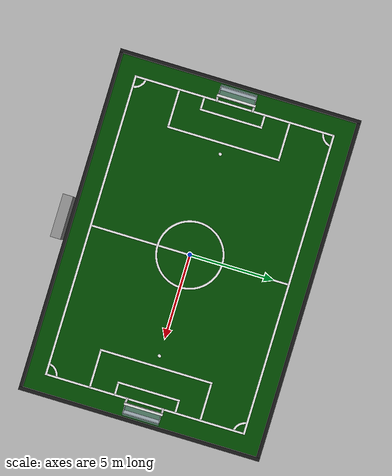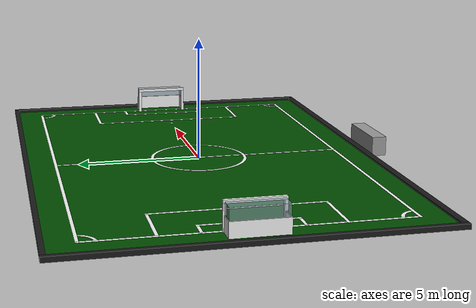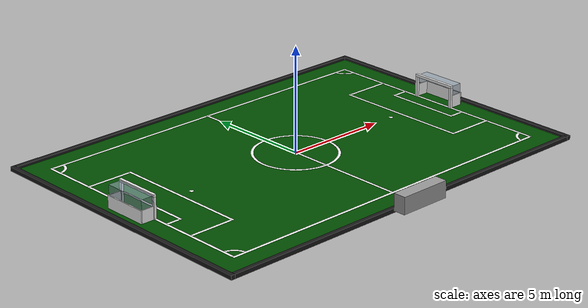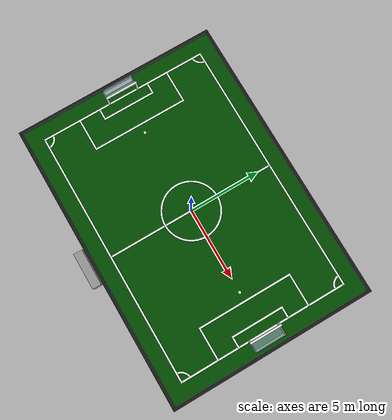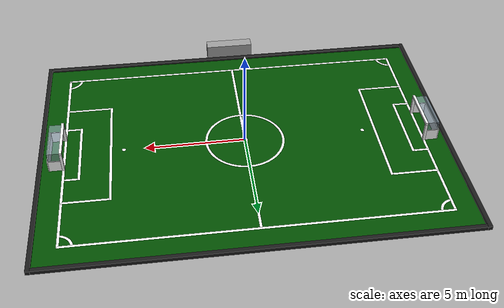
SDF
<?xml version="1.0" ?>
<sdf version="1.5">
  <model name="RoboCup MSL Field">
    <static>true</static>
    <link name="field">
      <pose>0 0 0 0 0 0</pose>

      <!-- FIELD GREEN CARPET:
        Dimensions:
            X = 18m(playable)+2*1m(Spacing) = 20m
            Y = 12m(playable)+2*1m(Spacing) = 14m
    -->
      <collision name="collision">
        <geometry>
          <plane>
            <size>20 14</size>
          </plane>
        </geometry>
        <surface>
          <friction>
            <ode>
              <mu>100</mu>
              <mu2>50</mu2>
            </ode>
          </friction>
        </surface>
      </collision>
      <visual name="carpet">
        <cast_shadows>false</cast_shadows>
        <geometry>
          <plane>
            <size>20 14</size>
          </plane>
        </geometry>
        <material>
            <!-- GREEN -->
            <ambient>0.0 0.2 0.0 1.0</ambient>
            <diffuse>0.0 0.3 0.0 1.0</diffuse>
            <specular>0.0225 0.0225 0.0225 1.0</specular>
        </material>
      </visual>

      <!-- OUTSIDE BARRIERS:
        0.2*0.2 meters, placed outside of the green carpet
     -->
      <collision name="collision_side_barrier1">
      <pose>0 7.1 0.9 0 0 0</pose>
        <geometry>
          <box>
            <size>20 0.2 2</size>
          </box>
        </geometry>
      </collision>
      <visual name="visual_side_barrier1">
      <pose>0 7.1 0.001 0 0 0</pose>
        <geometry>
          <box>
            <size>20 0.2 0.2</size>
          </box>
        </geometry>
        <material>
            <!-- BLACK -->
            <ambient>0.0 0.0 0.0 1.0</ambient>
            <diffuse>0.1 0.1 0.1 1.0</diffuse>
            <specular>0.0225 0.0225 0.0225 1.0</specular>
        </material>
      </visual>
      <collision name="collision_side_barrier2">
      <pose>0 -7.1 0.9 0 0 0</pose>
        <geometry>
          <box>
            <size>20 0.2 2</size>
          </box>
        </geometry>
      </collision>
      <visual name="visual_side_barrier2">
      <pose>0 -7.1 0.001 0 0 0</pose>
        <geometry>
          <box>
            <size>20 0.2 0.2</size>
          </box>
        </geometry>
        <material>
            <!-- BLACK -->
            <ambient>0.0 0.0 0.0 1.0</ambient>
            <diffuse>0.1 0.1 0.1 1.0</diffuse>
            <specular>0.0225 0.0225 0.0225 1.0</specular>
        </material>
      </visual>
      <collision name="collision_end_barrier1">
      <pose>10.1 0 0.9 0 0 0</pose>
        <geometry>
          <box>
            <size>0.2 14.4 2</size>
          </box>
        </geometry>
      </collision>
      <visual name="visual_end_barrier1">
      <pose>10.1 0 0.001 0 0 0</pose>
        <geometry>
          <box>
            <size>0.2 14.4 0.2</size>
          </box>
        </geometry>
        <material>
            <!-- BLACK -->
            <ambient>0.0 0.0 0.0 1.0</ambient>
            <diffuse>0.1 0.1 0.1 1.0</diffuse>
            <specular>0.0225 0.0225 0.0225 1.0</specular>
        </material>
      </visual>
      <collision name="collision_end_barrier2">
      <pose>-10.1 0 0.9 0 0 0</pose>
        <geometry>
          <box>
            <size>0.2 14.4 2</size>
          </box>
        </geometry>
      </collision>
      <visual name="visual_end_barrier2">
      <pose>-10.1 0 0.001 0 0 0</pose>
        <geometry>
          <box>
            <size>0.2 14.4 0.2</size>
          </box>
        </geometry>
        <material>
            <!-- BLACK -->
            <ambient>0.0 0.0 0.0 1.0</ambient>
            <diffuse>0.1 0.1 0.1 1.0</diffuse>
            <specular>0.0225 0.0225 0.0225 1.0</specular>
        </material>
      </visual>

      <!-- FIELD SIDE LINES:
        Line Thickness = 0.125m
        Length = 18m
        Position = Field.Y/2 - Line Thickness/2
     -->
      <visual name="sideline_1">
        <pose>0 5.9375 0.02 0 0 0</pose>
        <cast_shadows>false</cast_shadows>
        <geometry>
          <plane>
            <size>18 0.125</size>
          </plane>
        </geometry>
        <material>
            <!-- WHITE -->
            <ambient>0.8 0.8 0.8 1.0</ambient>
            <diffuse>0.95 0.95 0.95 1.0</diffuse>
            <specular>0.0225 0.0225 0.0225 1.0</specular>
        </material>
      </visual>
      <visual name="sideline_2">
        <pose>0 -5.9375 0.02 0 0 0</pose>
        <cast_shadows>false</cast_shadows>
        <geometry>
          <plane>
            <size>18 0.125</size>
          </plane>
        </geometry>
        <material>
            <!-- WHITE -->
            <ambient>0.8 0.8 0.8 1.0</ambient>
            <diffuse>0.95 0.95 0.95 1.0</diffuse>
            <specular>0.0225 0.0225 0.0225 1.0</specular>
        </material>
      </visual>

      <!-- FIELD END LINES:
        Line Thickness = 0.125m
        Length = 12
        Position = Field.X/2 - Line Thickness/2
     -->
      <visual name="endline_1">
        <pose>-8.9375 0 0.02 0 0 0</pose>
        <cast_shadows>false</cast_shadows>
        <geometry>
          <plane>
            <size>0.125 12</size>
          </plane>
        </geometry>
        <material>
            <!-- WHITE -->
            <ambient>0.8 0.8 0.8 1.0</ambient>
            <diffuse>0.95 0.95 0.95 1.0</diffuse>
            <specular>0.0225 0.0225 0.0225 1.0</specular>
        </material>
      </visual>
      <visual name="endline_2">
        <pose>8.9375 0 0.02 0 0 0</pose>
        <cast_shadows>false</cast_shadows>
        <geometry>
          <plane>
            <size>0.125 12</size>
          </plane>
        </geometry>
        <material>
            <!-- WHITE -->
            <ambient>0.8 0.8 0.8 1.0</ambient>
            <diffuse>0.95 0.95 0.95 1.0</diffuse>
            <specular>0.0225 0.0225 0.0225 1.0</specular>
        </material>
      </visual>

      <!-- CENTER LINE AND CIRCLES
        Center circle diameter = 4m
        Center spot diameter = 0.15m
     -->
      <visual name="halfway_line">
        <pose>0 0 0.02 0 0 0</pose>
        <cast_shadows>false</cast_shadows>
        <geometry>
          <plane>
            <size>0.125 12</size>
          </plane>
        </geometry>
        <material>
            <!-- WHITE -->
            <ambient>0.8 0.8 0.8 1.0</ambient>
            <diffuse>0.95 0.95 0.95 1.0</diffuse>
            <specular>0.0225 0.0225 0.0225 1.0</specular>
        </material>
      </visual>
      <visual name="center_point">
        <pose>0 0 0.02 0 0 0</pose>
        <cast_shadows>false</cast_shadows>
        <geometry>
          <cylinder>
            <radius>0.15</radius>
            <length>0.00001</length>
          </cylinder>
        </geometry>
        <material>
            <!-- WHITE -->
            <ambient>0.8 0.8 0.8 1.0</ambient>
            <diffuse>0.95 0.95 0.95 1.0</diffuse>
            <specular>0.0225 0.0225 0.0225 1.0</specular>
        </material>
      </visual>
      <visual name="center_circle">
        <pose>0 0 0.02 0 0 0</pose>
        <cast_shadows>false</cast_shadows>
        <geometry>
          <mesh>
            <scale>1 1 1</scale>
            <uri>model://robocup_msl_field/meshes/centerline.stl</uri>
          </mesh>
        </geometry>
        <material>
            <!-- WHITE -->
            <ambient>0.8 0.8 0.8 1.0</ambient>
            <diffuse>0.95 0.95 0.95 1.0</diffuse>
            <specular>0.0225 0.0225 0.0225 1.0</specular>
        </material>
      </visual>
      <!-- CORNERS
     -->
     <visual name="corner_1">
        <pose>-9 -6 0.02 0 0 0</pose>
        <cast_shadows>false</cast_shadows>
        <geometry>
          <mesh>
            <scale>1 1 1</scale>
            <uri>model://robocup_msl_field/meshes/corner.stl</uri>
          </mesh>
        </geometry>
        <material>
            <!-- WHITE -->
            <ambient>0.8 0.8 0.8 1.0</ambient>
            <diffuse>0.95 0.95 0.95 1.0</diffuse>
            <specular>0.0225 0.0225 0.0225 1.0</specular>
        </material>
      </visual>
      <visual name="corner_2">
        <pose>9 -6 0.02 0 0 1.57</pose>
        <cast_shadows>false</cast_shadows>
        <geometry>
          <mesh>
            <scale>1 1 1</scale>
            <uri>model://robocup_msl_field/meshes/corner.stl</uri>
          </mesh>
        </geometry>
        <material>
            <!-- WHITE -->
            <ambient>0.8 0.8 0.8 1.0</ambient>
            <diffuse>0.95 0.95 0.95 1.0</diffuse>
            <specular>0.0225 0.0225 0.0225 1.0</specular>
        </material>
      </visual>
      <visual name="corner_3">
        <pose>-9 6 0.02 0 0 -1.57</pose>
        <cast_shadows>false</cast_shadows>
        <geometry>
          <mesh>
            <scale>1 1 1</scale>
            <uri>model://robocup_msl_field/meshes/corner.stl</uri>
          </mesh>
        </geometry>
        <material>
            <!-- WHITE -->
            <ambient>0.8 0.8 0.8 1.0</ambient>
            <diffuse>0.95 0.95 0.95 1.0</diffuse>
            <specular>0.0225 0.0225 0.0225 1.0</specular>
        </material>
      </visual>
      <visual name="corner_4">
        <pose>9 6 0.02 0 0 3.14</pose>
        <cast_shadows>false</cast_shadows>
        <geometry>
          <mesh>
            <scale>1 1 1</scale>
            <uri>model://robocup_msl_field/meshes/corner.stl</uri>
          </mesh>
        </geometry>
        <material>
            <!-- WHITE -->
            <ambient>0.8 0.8 0.8 1.0</ambient>
            <diffuse>0.95 0.95 0.95 1.0</diffuse>
            <specular>0.0225 0.0225 0.0225 1.0</specular>
        </material>
      </visual>

      <!-- AREA 1
     -->
      <visual name="b_area_1_side_1">
        <pose>-7.875 -3.313 0.02 0 0 0</pose>
        <cast_shadows>false</cast_shadows>
        <geometry>
          <plane>
            <size>2.25 0.125</size>
          </plane>
        </geometry>
        <material>
            <!-- WHITE -->
            <ambient>0.8 0.8 0.8 1.0</ambient>
            <diffuse>0.95 0.95 0.95 1.0</diffuse>
            <specular>0.0225 0.0225 0.0225 1.0</specular>
        </material>
      </visual>
    <visual name="b_area_1_side_2">
        <pose>-7.875 3.313 0.02 0 0 0</pose>
        <cast_shadows>false</cast_shadows>
        <geometry>
          <plane>
            <size>2.25 0.125</size>
          </plane>
        </geometry>
        <material>
            <!-- WHITE -->
            <ambient>0.8 0.8 0.8 1.0</ambient>
            <diffuse>0.95 0.95 0.95 1.0</diffuse>
            <specular>0.0225 0.0225 0.0225 1.0</specular>
        </material>
      </visual>
      <visual name="b_area_1_front">
        <pose>-6.6875 0 0.02 0 0 0</pose>
        <cast_shadows>false</cast_shadows>
        <geometry>
          <plane>
            <size>0.125 6.75</size>
          </plane>
        </geometry>
        <material>
            <!-- WHITE -->
            <ambient>0.8 0.8 0.8 1.0</ambient>
            <diffuse>0.95 0.95 0.95 1.0</diffuse>
            <specular>0.0225 0.0225 0.0225 1.0</specular>
        </material>
      </visual>

      <visual name="s_area_1_side_1">
        <pose>-8.625 -1.813 0.02 0 0 0</pose>
        <cast_shadows>false</cast_shadows>
        <geometry>
          <plane>
            <size>0.75 0.125</size>
          </plane>
        </geometry>
        <material>
            <!-- WHITE -->
            <ambient>0.8 0.8 0.8 1.0</ambient>
            <diffuse>0.95 0.95 0.95 1.0</diffuse>
            <specular>0.0225 0.0225 0.0225 1.0</specular>
        </material>
      </visual>
    <visual name="s_area_1_side_2">
        <pose>-8.625 1.813 0.02 0 0 0</pose>
        <cast_shadows>false</cast_shadows>
        <geometry>
          <plane>
            <size>0.75 0.125</size>
          </plane>
        </geometry>
        <material>
            <!-- WHITE -->
            <ambient>0.8 0.8 0.8 1.0</ambient>
            <diffuse>0.95 0.95 0.95 1.0</diffuse>
            <specular>0.0225 0.0225 0.0225 1.0</specular>
        </material>
      </visual>
      <visual name="s_area_1_front">
        <pose>-8.187 0 0.02 0 0 0</pose>
        <cast_shadows>false</cast_shadows>
        <geometry>
          <plane>
            <size>0.125 3.75</size>
          </plane>
        </geometry>
        <material>
            <!-- WHITE -->
            <ambient>0.8 0.8 0.8 1.0</ambient>
            <diffuse>0.95 0.95 0.95 1.0</diffuse>
            <specular>0.0225 0.0225 0.0225 1.0</specular>
        </material>
      </visual>
      <visual name="spot_1">
        <pose>-6.05 0 0.02 0 0 0</pose>
        <cast_shadows>false</cast_shadows>
        <geometry>
          <cylinder>
            <radius>0.1</radius>
            <length>0.00001</length>
          </cylinder>
        </geometry>
        <material>
            <!-- WHITE -->
            <ambient>0.8 0.8 0.8 1.0</ambient>
            <diffuse>0.95 0.95 0.95 1.0</diffuse>
            <specular>0.0225 0.0225 0.0225 1.0</specular>
        </material>
      </visual>

      <!-- AREA 2
     -->
      <visual name="b_area_2_side_1">
        <pose>7.875 -3.313 0.02 0 0 0</pose>
        <cast_shadows>false</cast_shadows>
        <geometry>
          <plane>
            <size>2.25 0.125</size>
          </plane>
        </geometry>
        <material>
            <!-- WHITE -->
            <ambient>0.8 0.8 0.8 1.0</ambient>
            <diffuse>0.95 0.95 0.95 1.0</diffuse>
            <specular>0.0225 0.0225 0.0225 1.0</specular>
        </material>
      </visual>
    <visual name="b_area_2_side_2">
        <pose>7.875 3.313 0.02 0 0 0</pose>
        <cast_shadows>false</cast_shadows>
        <geometry>
          <plane>
            <size>2.25 0.125</size>
          </plane>
        </geometry>
        <material>
            <!-- WHITE -->
            <ambient>0.8 0.8 0.8 1.0</ambient>
            <diffuse>0.95 0.95 0.95 1.0</diffuse>
            <specular>0.0225 0.0225 0.0225 1.0</specular>
        </material>
      </visual>
      <visual name="b_area_2_front">
        <pose>6.6875 0 0.02 0 0 0</pose>
        <cast_shadows>false</cast_shadows>
        <geometry>
          <plane>
            <size>0.125 6.75</size>
          </plane>
        </geometry>
        <material>
            <!-- WHITE -->
            <ambient>0.8 0.8 0.8 1.0</ambient>
            <diffuse>0.95 0.95 0.95 1.0</diffuse>
            <specular>0.0225 0.0225 0.0225 1.0</specular>
        </material>
      </visual>

      <visual name="s_area_2_side_1">
        <pose>8.625 -1.813 0.02 0 0 0</pose>
        <cast_shadows>false</cast_shadows>
        <geometry>
          <plane>
            <size>0.75 0.125</size>
          </plane>
        </geometry>
        <material>
            <!-- WHITE -->
            <ambient>0.8 0.8 0.8 1.0</ambient>
            <diffuse>0.95 0.95 0.95 1.0</diffuse>
            <specular>0.0225 0.0225 0.0225 1.0</specular>
        </material>
      </visual>
    <visual name="s_area_2_side_2">
        <pose>8.625 1.813 0.02 0 0 0</pose>
        <cast_shadows>false</cast_shadows>
        <geometry>
          <plane>
            <size>0.75 0.125</size>
          </plane>
        </geometry>
        <material>
            <!-- WHITE -->
            <ambient>0.8 0.8 0.8 1.0</ambient>
            <diffuse>0.95 0.95 0.95 1.0</diffuse>
            <specular>0.0225 0.0225 0.0225 1.0</specular>
        </material>
      </visual>
      <visual name="s_area_2_front">
        <pose>8.187 0 0.02 0 0 0</pose>
        <cast_shadows>false</cast_shadows>
        <geometry>
          <plane>
            <size>0.125 3.75</size>
          </plane>
        </geometry>
        <material>
            <!-- WHITE -->
            <ambient>0.8 0.8 0.8 1.0</ambient>
            <diffuse>0.95 0.95 0.95 1.0</diffuse>
            <specular>0.0225 0.0225 0.0225 1.0</specular>
        </material>
      </visual>
      <visual name="spot_2">
        <pose>6.05 0 0.02 0 0 0</pose>
        <cast_shadows>false</cast_shadows>
        <geometry>
          <cylinder>
            <radius>0.1</radius>
            <length>0.00001</length>
          </cylinder>
        </geometry>
        <material>
            <!-- WHITE -->
            <ambient>0.8 0.8 0.8 1.0</ambient>
            <diffuse>0.95 0.95 0.95 1.0</diffuse>
            <specular>0.0225 0.0225 0.0225 1.0</specular>
        </material>
      </visual>
    </link>

    <!-- REFBOX
     -->
    <link name="ref_box_table">
      <collision name="collision_ref">
        <pose>0 -7.5 0.4 0 0 0</pose>
        <geometry>
          <box>
            <size>2.5 0.6 0.8</size>
         </box>
         </geometry>
      </collision>
      <visual name="refbox">
        <pose>0 -7.5 0.4 0 0 0</pose>
        <cast_shadows>true</cast_shadows>
        <geometry>
          <box>
            <size>2.5 0.6 0.8</size>
          </box>
        </geometry>
        <material>
            <!-- GREY -->
            <ambient>0.4 0.4 0.4 1.0</ambient>
            <diffuse>0.6 0.6 0.6 1.0</diffuse>
            <specular>0.0225 0.0225 0.0225 1.0</specular>
        </material>
      </visual>
    </link>

    <!-- GOALIE 1
     -->
    <link name="goalie_1">
      <collision name="collision_post1_g1">
        <pose>-8.9375 -1.0625 0.5 0 0 0</pose>
        <geometry>
          <box>
            <size>0.125 0.125 1</size>
         </box>
         </geometry>
      </collision>
      <visual name="post1_g1">
        <pose>-8.9375 -1.0625 0.5 0 0 0</pose>
        <cast_shadows>true</cast_shadows>
        <geometry>
          <box>
            <size>0.125 0.125 1</size>
         </box>
         </geometry>
        <material>
            <!-- WHITE -->
            <ambient>0.8 0.8 0.8 1.0</ambient>
            <diffuse>0.95 0.95 0.95 1.0</diffuse>
            <specular>0.0225 0.0225 0.0225 1.0</specular>
        </material>
      </visual>
      <collision name="collision_post2_g1">
        <pose>-8.9375 1.0625 0.5 0 0 0</pose>
        <geometry>
          <box>
            <size>0.125 0.125 1</size>
         </box>
         </geometry>
      </collision>
      <visual name="post2_g1">
        <pose>-8.9375 1.0625 0.5 0 0 0</pose>
        <cast_shadows>true</cast_shadows>
        <geometry>
          <box>
            <size>0.125 0.125 1</size>
         </box>
         </geometry>
        <material>
            <!-- WHITE -->
            <ambient>0.8 0.8 0.8 1.0</ambient>
            <diffuse>0.95 0.95 0.95 1.0</diffuse>
            <specular>0.0225 0.0225 0.0225 1.0</specular>
        </material>
      </visual>
      <collision name="collision_crossbar_g1">
        <pose>-8.9375 0 1.0625 0 0 0</pose>
        <geometry>
          <box>
            <size>0.125 2.25 0.125</size>
         </box>
         </geometry>
      </collision>
      <visual name="crossbar_g1">
        <pose>-8.9375 0 1.0625 0 0 0</pose>
        <cast_shadows>true</cast_shadows>
        <geometry>
          <box>
            <size>0.125 2.25 0.125</size>
         </box>
         </geometry>
        <material>
            <!-- WHITE -->
            <ambient>0.8 0.8 0.8 1.0</ambient>
            <diffuse>0.95 0.95 0.95 1.0</diffuse>
            <specular>0.0225 0.0225 0.0225 1.0</specular>
        </material>
      </visual>
      <collision name="collision_back_g1">
        <pose>-9.625 0 0.3 0 0 0</pose>
        <geometry>
          <box>
            <size>0.05 2.175 0.6</size>
         </box>
         </geometry>
      </collision>
      <visual name="back_g1">
        <pose>-9.625 0 0.3 0 0 0</pose>
        <cast_shadows>true</cast_shadows>
        <geometry>
          <box>
            <size>0.05 2.175 0.6</size>
         </box>
         </geometry>
        <material>
            <!-- WHITE -->
            <ambient>0.8 0.8 0.8 1.0</ambient>
            <diffuse>0.95 0.95 0.95 1.0</diffuse>
            <specular>0.0225 0.0225 0.0225 1.0</specular>
        </material>
      </visual>
      <collision name="collision_side1_g1">
        <pose>-9.3 -1.0625 0.3 0 0 0</pose>
        <geometry>
          <box>
            <size>0.6 0.05 0.6</size>
         </box>
         </geometry>
      </collision>
      <visual name="side1_g1">
        <pose>-9.3 -1.0625 0.3 0 0 0</pose>
        <cast_shadows>true</cast_shadows>
        <geometry>
          <box>
            <size>0.6 0.05 0.6</size>
         </box>
         </geometry>
        <material>
            <!-- WHITE -->
            <ambient>0.8 0.8 0.8 1.0</ambient>
            <diffuse>0.95 0.95 0.95 1.0</diffuse>
            <specular>0.0225 0.0225 0.0225 1.0</specular>
        </material>
      </visual>
      <collision name="collision_side2_g1">
        <pose>-9.3 1.0625 0.3 0 0 0</pose>
        <geometry>
          <box>
            <size>0.6 0.05 0.6</size>
         </box>
         </geometry>
      </collision>
      <visual name="side2_g1">
        <pose>-9.3 1.0625 0.3 0 0 0</pose>
        <cast_shadows>true</cast_shadows>
        <geometry>
          <box>
            <size>0.6 0.05 0.6</size>
         </box>
         </geometry>
        <material>
            <!-- WHITE -->
            <ambient>0.8 0.8 0.8 1.0</ambient>
            <diffuse>0.95 0.95 0.95 1.0</diffuse>
            <specular>0.0225 0.0225 0.0225 1.0</specular>
        </material>
      </visual>
      <!-- Net
     -->
     <collision name="collision_net_u_g1">
        <pose>-9.3 0 1.0625 0 0 0</pose>
        <geometry>
          <box>
            <size>0.6 2.125 0.001</size>
         </box>
         </geometry>
      </collision>
      <visual name="net_u_g1">
        <pose>-9.3 0 1.0625 0 0 0</pose>
        <cast_shadows>true</cast_shadows>
        <geometry>
          <box>
            <size>0.6 2.125 0.001</size>
         </box>
         </geometry>
        <material>
            <!-- GLASS -->
            <ambient>0.2 0.2 0.2 1.0</ambient>
            <diffuse>0.588235 0.670588 0.729412 0.6</diffuse>
            <specular>0.9 0.9 0.9 1.0</specular>
        </material>
      </visual>
      <collision name="collision_net_b_g1">
        <pose>-9.6 0 0.8313 0 1.57 0</pose>
        <geometry>
          <box>
            <size>0.4625 2.125 0.001</size>
         </box>
         </geometry>
      </collision>
      <visual name="net_b_g1">
        <pose>-9.6 0 0.8313 0 1.57 0</pose>
        <cast_shadows>true</cast_shadows>
        <geometry>
          <box>
            <size>0.4625 2.125 0.001</size>
         </box>
         </geometry>
        <material>
            <!-- GLASS -->
            <ambient>0.2 0.2 0.2 1.0</ambient>
            <diffuse>0.588235 0.670588 0.729412 0.6</diffuse>
            <specular>0.9 0.9 0.9 1.0</specular>
        </material>
      </visual>
      <collision name="collision_net_s1_g1">
        <pose>-9.3 -1.0625 0.8313 1.57 0 0</pose>
        <geometry>
          <box>
            <size>0.6 0.4625 0.001</size>
         </box>
         </geometry>
      </collision>
      <visual name="net_s1_g1">
        <pose>-9.3 -1.0625 0.8313 1.57 0 0</pose>
        <cast_shadows>true</cast_shadows>
        <geometry>
          <box>
            <size>0.6 0.4625 0.001</size>
         </box>
         </geometry>
        <material>
            <!-- GLASS -->
            <ambient>0.2 0.2 0.2 1.0</ambient>
            <diffuse>0.588235 0.670588 0.729412 0.6</diffuse>
            <specular>0.9 0.9 0.9 1.0</specular>
        </material>
      </visual>
      <collision name="collision_net_s2_g1">
        <pose>-9.3 1.0625 0.8313 1.57 0 0</pose>
        <geometry>
          <box>
            <size>0.6 0.4625 0.001</size>
         </box>
         </geometry>
      </collision>
      <visual name="net_s2_g1">
        <pose>-9.3 1.0625 0.8313 1.57 0 0</pose>
        <cast_shadows>true</cast_shadows>
        <geometry>
          <box>
            <size>0.6 0.4625 0.001</size>
         </box>
         </geometry>
        <material>
            <!-- GLASS -->
            <ambient>0.2 0.2 0.2 1.0</ambient>
            <diffuse>0.588235 0.670588 0.729412 0.6</diffuse>
            <specular>0.9 0.9 0.9 1.0</specular>
        </material>
      </visual>
    </link>
    <!-- GOALIE 2
     -->
    <link name="goalie_2">
      <collision name="collision_post1_g2">
        <pose>8.9375 -1.0625 0.5 0 0 0</pose>
        <geometry>
          <box>
            <size>0.125 0.125 1</size>
         </box>
         </geometry>
      </collision>
      <visual name="post1_g2">
        <pose>8.9375 -1.0625 0.5 0 0 0</pose>
        <cast_shadows>true</cast_shadows>
        <geometry>
          <box>
            <size>0.125 0.125 1</size>
         </box>
         </geometry>
        <material>
            <!-- WHITE -->
            <ambient>0.8 0.8 0.8 1.0</ambient>
            <diffuse>0.95 0.95 0.95 1.0</diffuse>
            <specular>0.0225 0.0225 0.0225 1.0</specular>
        </material>
      </visual>
      <collision name="collision_post2_g2">
        <pose>8.9375 1.0625 0.5 0 0 0</pose>
        <geometry>
          <box>
            <size>0.125 0.125 1</size>
         </box>
         </geometry>
      </collision>
      <visual name="post2_g2">
        <pose>8.9375 1.0625 0.5 0 0 0</pose>
        <cast_shadows>true</cast_shadows>
        <geometry>
          <box>
            <size>0.125 0.125 1</size>
         </box>
         </geometry>
        <material>
            <!-- WHITE -->
            <ambient>0.8 0.8 0.8 1.0</ambient>
            <diffuse>0.95 0.95 0.95 1.0</diffuse>
            <specular>0.0225 0.0225 0.0225 1.0</specular>
        </material>
      </visual>
      <collision name="collision_crossbar_g2">
        <pose>8.9375 0 1.0625 0 0 0</pose>
        <geometry>
          <box>
            <size>0.125 2.25 0.125</size>
         </box>
         </geometry>
      </collision>
      <visual name="crossbar_g2">
        <pose>8.9375 0 1.0625 0 0 0</pose>
        <cast_shadows>true</cast_shadows>
        <geometry>
          <box>
            <size>0.125 2.25 0.125</size>
         </box>
         </geometry>
        <material>
            <!-- WHITE -->
            <ambient>0.8 0.8 0.8 1.0</ambient>
            <diffuse>0.95 0.95 0.95 1.0</diffuse>
            <specular>0.0225 0.0225 0.0225 1.0</specular>
        </material>
      </visual>
      <collision name="collision_back_g2">
        <pose>9.625 0 0.3 0 0 0</pose>
        <geometry>
          <box>
            <size>0.05 2.175 0.6</size>
         </box>
         </geometry>
      </collision>
      <visual name="back_g2">
        <pose>9.625 0 0.3 0 0 0</pose>
        <cast_shadows>true</cast_shadows>
        <geometry>
          <box>
            <size>0.05 2.175 0.6</size>
         </box>
         </geometry>
        <material>
            <!-- WHITE -->
            <ambient>0.8 0.8 0.8 1.0</ambient>
            <diffuse>0.95 0.95 0.95 1.0</diffuse>
            <specular>0.0225 0.0225 0.0225 1.0</specular>
        </material>
      </visual>
      <collision name="collision_side1_g2">
        <pose>9.3 -1.0625 0.3 0 0 0</pose>
        <geometry>
          <box>
            <size>0.6 0.05 0.6</size>
         </box>
         </geometry>
      </collision>
      <visual name="side1_g2">
        <pose>9.3 -1.0625 0.3 0 0 0</pose>
        <cast_shadows>true</cast_shadows>
        <geometry>
          <box>
            <size>0.6 0.05 0.6</size>
         </box>
         </geometry>
        <material>
            <!-- WHITE -->
            <ambient>0.8 0.8 0.8 1.0</ambient>
            <diffuse>0.95 0.95 0.95 1.0</diffuse>
            <specular>0.0225 0.0225 0.0225 1.0</specular>
        </material>
      </visual>
      <collision name="collision_side2_g2">
        <pose>9.3 1.0625 0.3 0 0 0</pose>
        <geometry>
          <box>
            <size>0.6 0.05 0.6</size>
         </box>
         </geometry>
      </collision>
      <visual name="side2_g2">
        <pose>9.3 1.0625 0.3 0 0 0</pose>
        <cast_shadows>true</cast_shadows>
        <geometry>
          <box>
            <size>0.6 0.05 0.6</size>
         </box>
         </geometry>
        <material>
            <!-- WHITE -->
            <ambient>0.8 0.8 0.8 1.0</ambient>
            <diffuse>0.95 0.95 0.95 1.0</diffuse>
            <specular>0.0225 0.0225 0.0225 1.0</specular>
        </material>
      </visual>
       <!-- Net
     -->
     <collision name="collision_net_u_g2">
        <pose>9.3 0 1.0625 0 0 0</pose>
        <geometry>
          <box>
            <size>0.6 2.125 0.001</size>
         </box>
         </geometry>
      </collision>
      <visual name="net_u_g2">
        <pose>9.3 0 1.0625 0 0 0</pose>
        <cast_shadows>true</cast_shadows>
        <geometry>
          <box>
            <size>0.6 2.125 0.001</size>
         </box>
         </geometry>
        <material>
            <!-- GLASS -->
            <ambient>0.2 0.2 0.2 1.0</ambient>
            <diffuse>0.588235 0.670588 0.729412 0.6</diffuse>
            <specular>0.9 0.9 0.9 1.0</specular>
        </material>
      </visual>
      <collision name="collision_net_b_g2">
        <pose>9.6 0 0.8313 0 1.57 0</pose>
        <geometry>
          <box>
            <size>0.4625 2.125 0.001</size>
         </box>
         </geometry>
      </collision>
      <visual name="net_b_g2">
        <pose>9.6 0 0.8313 0 1.57 0</pose>
        <cast_shadows>true</cast_shadows>
        <geometry>
          <box>
            <size>0.4625 2.125 0.001</size>
         </box>
         </geometry>
        <material>
            <!-- GLASS -->
            <ambient>0.2 0.2 0.2 1.0</ambient>
            <diffuse>0.588235 0.670588 0.729412 0.6</diffuse>
            <specular>0.9 0.9 0.9 1.0</specular>
        </material>
      </visual>
      <collision name="collision_net_s1_g2">
        <pose>9.3 -1.0625 0.8313 1.57 0 0</pose>
        <geometry>
          <box>
            <size>0.6 0.4625 0.001</size>
         </box>
         </geometry>
      </collision>
      <visual name="net_s1_g2">
        <pose>9.3 -1.0625 0.8313 1.57 0 0</pose>
        <cast_shadows>true</cast_shadows>
        <geometry>
          <box>
            <size>0.6 0.4625 0.001</size>
         </box>
         </geometry>
        <material>
            <!-- GLASS -->
            <ambient>0.2 0.2 0.2 1.0</ambient>
            <diffuse>0.588235 0.670588 0.729412 0.6</diffuse>
            <specular>0.9 0.9 0.9 1.0</specular>
        </material>
      </visual>
      <collision name="collision_net_s2_g2">
        <pose>9.3 1.0625 0.8313 1.57 0 0</pose>
        <geometry>
          <box>
            <size>0.6 0.4625 0.001</size>
         </box>
         </geometry>
      </collision>
      <visual name="net_s2_g2">
        <pose>9.3 1.0625 0.8313 1.57 0 0</pose>
        <cast_shadows>true</cast_shadows>
        <geometry>
          <box>
            <size>0.6 0.4625 0.001</size>
         </box>
         </geometry>
        <material>
            <!-- GLASS -->
            <ambient>0.2 0.2 0.2 1.0</ambient>
            <diffuse>0.588235 0.670588 0.729412 0.6</diffuse>
            <specular>0.9 0.9 0.9 1.0</specular>
        </material>
      </visual>
    </link>
  </model>
</sdf>
